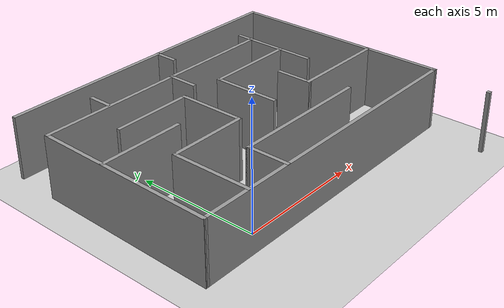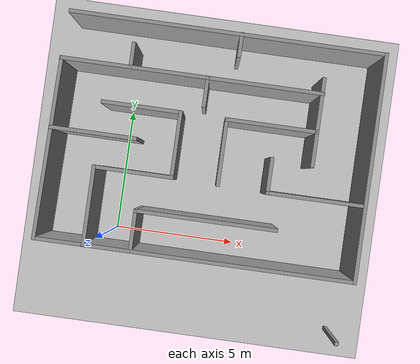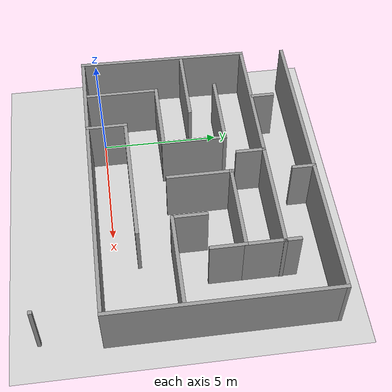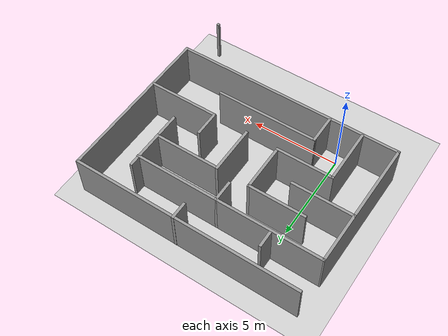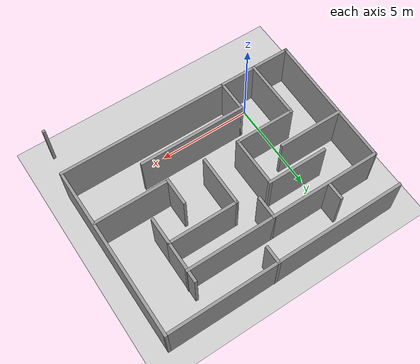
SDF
<sdf version="1.7">
 <world name="default">
  <light name="sun" type="directional">
   <pose>0 0 10 0 -0 0</pose>
   <diffuse>0.8 0.8 0.8 1</diffuse>
   <specular>0.2 0.2 0.2 1</specular>
   <attenuation>
    <range>1000</range>
    <constant>0.9</constant>
    <linear>0.01</linear>
    <quadratic>0.001</quadratic>
   </attenuation>
   <direction>-0.5 0.1 -0.9</direction>
   <spot><inner_angle>0</inner_angle><outer_angle>0</outer_angle><falloff>0</falloff></spot>
  </light>
  <model name="ground_plane">
   <static>1</static>
   <link name="link">
    <collision name="collision">
     <geometry><plane><normal>0 0 1</normal><size>100 100</size></plane></geometry>
     <surface>
      <contact><collide_bitmask>65535</collide_bitmask></contact>
      <friction><ode><mu>100</mu><mu2>50</mu2></ode></friction>
     </surface>
    </collision>
    <visual name="visual">
     <cast_shadows>0</cast_shadows>
     <geometry><plane><normal>0 0 1</normal><size>100 100</size></plane></geometry>
     <material>
      <script><uri>file://media/materials/scripts/gazebo.material</uri><name>Gazebo/Grey</name></script>
     </material>
    </visual>
   </link>
  </model>
  <gravity>0 0 -9.8</gravity>
  <magnetic_field>6e-06 2.3e-05 -4.2e-05</magnetic_field>
  <atmosphere type="adiabatic"/>
  <physics type="ode">
   <max_step_size>0.001</max_step_size>
   <real_time_factor>1</real_time_factor>
   <real_time_update_rate>1000</real_time_update_rate>
  </physics>
  <scene><ambient>0.4 0.4 0.4 1</ambient><background>0.7 0.7 0.7 1</background><shadows>1</shadows></scene>
  <audio><device>default</device></audio>
  <spherical_coordinates>
   <surface_model>EARTH_WGS84</surface_model>
   <latitude_deg>0</latitude_deg>
   <longitude_deg>0</longitude_deg>
   <elevation>0</elevation>
   <heading_deg>0</heading_deg>
  </spherical_coordinates>
  <model name="Laberinto1">
   <pose>3.51708 2.66118 0 0 -0 0</pose>
   <link name="Wall_10">
    <collision name="Wall_10_Collision">
     <geometry><box><size>9.25 0.15 2.5</size></box></geometry>
     <pose>0 0 1.25 0 -0 0</pose>
    </collision>
    <visual name="Wall_10_Visual">
     <pose>0 0 1.25 0 -0 0</pose>
     <geometry><box><size>9.25 0.15 2.5</size></box></geometry>
     <material>
      <script><uri>file://media/materials/scripts/gazebo.material</uri><name>Gazebo/Grey</name></script>
      <ambient>1 1 1 1</ambient>
     </material>
     <meta><layer>0</layer></meta>
    </visual>
    <pose>6.41557 1.24021 0 0 -0 1.5708</pose>
   </link>
   <link name="Wall_14">
    <collision name="Wall_14_Collision">
     <geometry><box><size>12.75 0.15 2.5</size></box></geometry>
     <pose>0 0 1.25 0 -0 0</pose>
    </collision>
    <visual name="Wall_14_Visual">
     <pose>0 0 1.25 0 -0 0</pose>
     <geometry><box><size>12.75 0.15 2.5</size></box></geometry>
     <material>
      <script><uri>file://media/materials/scripts/gazebo.material</uri><name>Gazebo/Grey</name></script>
      <ambient>1 1 1 1</ambient>
     </material>
     <meta><layer>0</layer></meta>
    </visual>
    <pose>0.115569 5.79021 0 0 -0 0</pose>
   </link>
   <link name="Wall_16">
    <collision name="Wall_16_Collision">
     <geometry><box><size>3.25 0.15 2.5</size></box></geometry>
     <pose>0 0 1.25 0 -0 0</pose>
    </collision>
    <visual name="Wall_16_Visual">
     <pose>0 0 1.25 0 -0 0</pose>
     <geometry><box><size>3.25 0.15 2.5</size></box></geometry>
     <material>
      <script><uri>file://media/materials/scripts/gazebo.material</uri><name>Gazebo/Grey</name></script>
      <ambient>1 1 1 1</ambient>
     </material>
     <meta><layer>0</layer></meta>
    </visual>
    <pose>-4.43463 -1.74153 0 0 -0 1.5708</pose>
   </link>
   <link name="Wall_17">
    <collision name="Wall_17_Collision">
     <geometry><box><size>3.25 0.15 2.5</size></box></geometry>
     <pose>0 0 1.25 0 -0 0</pose>
    </collision>
    <visual name="Wall_17_Visual">
     <pose>0 0 1.25 0 -0 0</pose>
     <geometry><box><size>3.25 0.15 2.5</size></box></geometry>
     <material>
      <script><uri>file://media/materials/scripts/gazebo.material</uri><name>Gazebo/Grey</name></script>
      <ambient>1 1 1 1</ambient>
     </material>
     <meta><layer>0</layer></meta>
    </visual>
    <pose>-2.88463 -0.191527 0 0 -0 0</pose>
   </link>
   <link name="Wall_19">
    <collision name="Wall_19_Collision">
     <geometry><box><size>1.75 0.15 2.5</size></box></geometry>
     <pose>0 0 1.25 0 -0 0</pose>
    </collision>
    <visual name="Wall_19_Visual">
     <pose>0 0 1.25 0 -0 0</pose>
     <geometry><box><size>1.75 0.15 2.5</size></box></geometry>
     <material>
      <script><uri>file://media/materials/scripts/gazebo.material</uri><name>Gazebo/Grey</name></script>
      <ambient>1 1 1 1</ambient>
     </material>
     <meta><layer>0</layer></meta>
    </visual>
    <pose>-2.56105 -2.49153 0 0 -0 1.5708</pose>
   </link>
   <link name="Wall_20">
    <collision name="Wall_20_Collision">
     <geometry><box><size>5.75 0.15 2.5</size></box></geometry>
     <pose>0 0 1.25 0 -0 0</pose>
    </collision>
    <visual name="Wall_20_Visual">
     <pose>0 0 1.25 0 -0 0</pose>
     <geometry><box><size>5.75 0.15 2.5</size></box></geometry>
     <material>
      <script><uri>file://media/materials/scripts/gazebo.material</uri><name>Gazebo/Grey</name></script>
      <ambient>1 1 1 1</ambient>
     </material>
     <meta><layer>0</layer></meta>
    </visual>
    <pose>0.238947 -1.69153 0 0 -0 0</pose>
   </link>
   <link name="Wall_22">
    <collision name="Wall_22_Collision">
     <geometry><box><size>2.75 0.15 2.5</size></box></geometry>
     <pose>0 0 1.25 0 -0 0</pose>
    </collision>
    <visual name="Wall_22_Visual">
     <pose>0 0 1.25 0 -0 0</pose>
     <geometry><box><size>2.75 0.15 2.5</size></box></geometry>
     <material>
      <script><uri>file://media/materials/scripts/gazebo.material</uri><name>Gazebo/Grey</name></script>
      <ambient>1 1 1 1</ambient>
     </material>
     <meta><layer>0</layer></meta>
    </visual>
    <pose>0.515318 1.08484 0 0 -0 1.5708</pose>
   </link>
   <link name="Wall_23">
    <collision name="Wall_23_Collision">
     <geometry><box><size>3.75 0.15 2.5</size></box></geometry>
     <pose>0 0 1.25 0 -0 0</pose>
    </collision>
    <visual name="Wall_23_Visual">
     <pose>0 0 1.25 0 -0 0</pose>
     <geometry><box><size>3.75 0.15 2.5</size></box></geometry>
     <material>
      <script><uri>file://media/materials/scripts/gazebo.material</uri><name>Gazebo/Grey</name></script>
      <ambient>1 1 1 1</ambient>
     </material>
     <meta><layer>0</layer></meta>
    </visual>
    <pose>2.31532 2.38484 0 0 -0 0</pose>
   </link>
   <link name="Wall_26">
    <collision name="Wall_26_Collision">
     <geometry><box><size>2.75 0.15 2.5</size></box></geometry>
     <pose>0 0 1.25 0 -0 0</pose>
    </collision>
    <visual name="Wall_26_Visual">
     <pose>0 0 1.25 0 -0 0</pose>
     <geometry><box><size>2.75 0.15 2.5</size></box></geometry>
     <material>
      <script><uri>file://media/materials/scripts/gazebo.material</uri><name>Gazebo/Grey</name></script>
      <ambient>1 1 1 1</ambient>
     </material>
     <meta><layer>0</layer></meta>
    </visual>
    <pose>-1.33463 1.10847 0 0 -0 1.5708</pose>
   </link>
   <link name="Wall_27">
    <collision name="Wall_27_Collision">
     <geometry><box><size>3.25 0.15 2.5</size></box></geometry>
     <pose>0 0 1.25 0 -0 0</pose>
    </collision>
    <visual name="Wall_27_Visual">
     <pose>0 0 1.25 0 -0 0</pose>
     <geometry><box><size>3.25 0.15 2.5</size></box></geometry>
     <material>
      <script><uri>file://media/materials/scripts/gazebo.material</uri><name>Gazebo/Grey</name></script>
      <ambient>1 1 1 1</ambient>
     </material>
     <meta><layer>0</layer></meta>
    </visual>
    <pose>-2.88463 2.40847 0 0 -0 3.14159</pose>
   </link>
   <link name="Wall_29">
    <collision name="Wall_29_Collision">
     <geometry><box><size>3.5 0.15 2.5</size></box></geometry>
     <pose>0 0 1.25 0 -0 0</pose>
    </collision>
    <visual name="Wall_29_Visual">
     <pose>0 0 1.25 0 -0 0</pose>
     <geometry><box><size>3.5 0.15 2.5</size></box></geometry>
     <material>
      <script><uri>file://media/materials/scripts/gazebo.material</uri><name>Gazebo/Grey</name></script>
      <ambient>1 1 1 1</ambient>
     </material>
     <meta><layer>0</layer></meta>
    </visual>
    <pose>-4.65433 1.13245 0 0 -0 0</pose>
   </link>
   <link name="Wall_3">
    <collision name="Wall_3_Collision">
     <geometry><box><size>0.15 0.15 2.5</size></box></geometry>
     <pose>0 0 1.25 0 -0 0</pose>
    </collision>
    <visual name="Wall_3_Visual">
     <pose>0 0 1.25 0 -0 0</pose>
     <geometry><box><size>0.15 0.15 2.5</size></box></geometry>
     <material>
      <script><uri>file://media/materials/scripts/gazebo.material</uri><name>Gazebo/Grey</name></script>
      <ambient>1 1 1 1</ambient>
     </material>
     <meta><layer>0</layer></meta>
    </visual>
    <pose>6.03254 -5.80019 0 0 -0 0</pose>
   </link>
   <link name="Wall_34">
    <collision name="Wall_34_Collision">
     <geometry><box><size>1.5 0.15 2.5</size></box></geometry>
     <pose>0 0 1.25 0 -0 0</pose>
    </collision>
    <visual name="Wall_34_Visual">
     <pose>0 0 1.25 0 -0 0</pose>
     <geometry><box><size>1.5 0.15 2.5</size></box></geometry>
     <material>
      <script><uri>file://media/materials/scripts/gazebo.material</uri><name>Gazebo/Grey</name></script>
      <ambient>1 1 1 1</ambient>
     </material>
     <meta><layer>0</layer></meta>
    </visual>
    <pose>2.50455 0.405158 0 0 -0 -1.5708</pose>
   </link>
   <link name="Wall_35">
    <collision name="Wall_35_Collision">
     <geometry><box><size>4 0.15 2.5</size></box></geometry>
     <pose>0 0 1.25 0 -0 0</pose>
    </collision>
    <visual name="Wall_35_Visual">
     <pose>0 0 1.25 0 -0 0</pose>
     <geometry><box><size>4 0.15 2.5</size></box></geometry>
     <material>
      <script><uri>file://media/materials/scripts/gazebo.material</uri><name>Gazebo/Grey</name></script>
      <ambient>1 1 1 1</ambient>
     </material>
     <meta><layer>0</layer></meta>
    </visual>
    <pose>4.42955 -0.269842 0 0 -0 0</pose>
   </link>
   <link name="Wall_37">
    <collision name="Wall_37_Collision">
     <geometry><box><size>1.5 0.15 2.5</size></box></geometry>
     <pose>0 0 1.25 0 -0 0</pose>
    </collision>
    <visual name="Wall_37_Visual">
     <pose>0 0 1.25 0 -0 0</pose>
     <geometry><box><size>1.5 0.15 2.5</size></box></geometry>
     <material>
      <script><uri>file://media/materials/scripts/gazebo.material</uri><name>Gazebo/Grey</name></script>
      <ambient>1 1 1 1</ambient>
     </material>
     <meta><layer>0</layer></meta>
    </visual>
    <pose>4.11532 1.70984 0 0 -0 -1.5708</pose>
   </link>
   <link name="Wall_41">
    <collision name="Wall_41_Collision">
     <geometry><box><size>2.25 0.15 2.5</size></box></geometry>
     <pose>0 0 1.25 0 -0 0</pose>
    </collision>
    <visual name="Wall_41_Visual">
     <pose>0 0 1.25 0 -0 0</pose>
     <geometry><box><size>2.25 0.15 2.5</size></box></geometry>
     <material>
      <script><uri>file://media/materials/scripts/gazebo.material</uri><name>Gazebo/Grey</name></script>
      <ambient>1 1 1 1</ambient>
     </material>
     <meta><layer>0</layer></meta>
    </visual>
    <pose>4.11532 3.43484 0 0 -0 1.5708</pose>
   </link>
   <link name="Wall_44">
    <collision name="Wall_44_Collision">
     <geometry><box><size>1.25 0.15 2.5</size></box></geometry>
     <pose>0 0 1.25 0 -0 0</pose>
    </collision>
    <visual name="Wall_44_Visual">
     <pose>0 0 1.25 0 -0 0</pose>
     <geometry><box><size>1.25 0.15 2.5</size></box></geometry>
     <material>
      <script><uri>file://media/materials/scripts/gazebo.material</uri><name>Gazebo/Grey</name></script>
      <ambient>1 1 1 1</ambient>
     </material>
     <meta><layer>0</layer></meta>
    </visual>
    <pose>-0.462915 3.35952 0 0 -0 -1.5708</pose>
   </link>
   <link name="Wall_46">
    <collision name="Wall_46_Collision">
     <geometry><box><size>5.95977 0.15 2.5</size></box></geometry>
     <pose>0 0 1.25 0 -0 0</pose>
    </collision>
    <visual name="Wall_46_Visual">
     <pose>0 0 1.25 0 -0 0</pose>
     <geometry><box><size>5.95977 0.15 2.5</size></box></geometry>
     <material>
      <script><uri>file://media/materials/scripts/gazebo.material</uri><name>Gazebo/Grey</name></script>
      <ambient>1 1 1 1</ambient>
     </material>
     <meta><layer>0</layer></meta>
    </visual>
    <pose>-3.3678 3.90952 0 0 -0 3.14159</pose>
   </link>
   <link name="Wall_49">
    <collision name="Wall_49_Collision">
     <geometry><box><size>7.37033 0.15 2.5</size></box></geometry>
     <pose>0 0 1.25 0 -0 0</pose>
    </collision>
    <visual name="Wall_49_Visual">
     <pose>0 0 1.25 0 -0 0</pose>
     <geometry><box><size>7.37033 0.15 2.5</size></box></geometry>
     <material>
      <script><uri>file://media/materials/scripts/gazebo.material</uri><name>Gazebo/Grey</name></script>
      <ambient>1 1 1 1</ambient>
     </material>
     <meta><layer>0</layer></meta>
    </visual>
    <pose>-6.35356 0.299864 0 0 -0 -1.58763</pose>
   </link>
   <link name="Wall_51">
    <collision name="Wall_51_Collision">
     <geometry><box><size>4.75 0.15 2.5</size></box></geometry>
     <pose>0 0 1.25 0 -0 0</pose>
    </collision>
    <visual name="Wall_51_Visual">
     <pose>0 0 1.25 0 -0 0</pose>
     <geometry><box><size>4.75 0.15 2.5</size></box></geometry>
     <material>
      <script><uri>file://media/materials/scripts/gazebo.material</uri><name>Gazebo/Grey</name></script>
      <ambient>1 1 1 1</ambient>
     </material>
     <meta><layer>0</layer></meta>
    </visual>
    <pose>1.83709 3.90952 0 0 -0 0</pose>
   </link>
   <link name="Wall_53">
    <collision name="Wall_53_Collision">
     <geometry><box><size>1 0.15 2.5</size></box></geometry>
     <pose>0 0 1.25 0 -0 0</pose>
    </collision>
    <visual name="Wall_53_Visual">
     <pose>0 0 1.25 0 -0 0</pose>
     <geometry><box><size>1 0.15 2.5</size></box></geometry>
     <material>
      <script><uri>file://media/materials/scripts/gazebo.material</uri><name>Gazebo/Grey</name></script>
      <ambient>1 1 1 1</ambient>
     </material>
     <meta><layer>0</layer></meta>
    </visual>
    <pose>0.643332 5.37519 0 0 -0 -1.5708</pose>
   </link>
   <link name="Wall_55">
    <collision name="Wall_55_Collision">
     <geometry><box><size>1 0.15 2.5</size></box></geometry>
     <pose>0 0 1.25 0 -0 0</pose>
    </collision>
    <visual name="Wall_55_Visual">
     <pose>0 0 1.25 0 -0 0</pose>
     <geometry><box><size>1 0.15 2.5</size></box></geometry>
     <material>
      <script><uri>file://media/materials/scripts/gazebo.material</uri><name>Gazebo/Grey</name></script>
      <ambient>1 1 1 1</ambient>
     </material>
     <meta><layer>0</layer></meta>
    </visual>
    <pose>-3.54029 4.40974 0 0 -0 -1.5708</pose>
   </link>
   <link name="Wall_9">
    <collision name="Wall_9_Collision">
     <geometry><box><size>12.9598 0.15 2.5</size></box></geometry>
     <pose>0 0 1.25 0 -0 0</pose>
    </collision>
    <visual name="Wall_9_Visual">
     <pose>0 0 1.25 0 -0 0</pose>
     <geometry><box><size>12.9598 0.15 2.5</size></box></geometry>
     <material>
      <script><uri>file://media/materials/scripts/gazebo.material</uri><name>Gazebo/Grey</name></script>
      <ambient>1 1 1 1</ambient>
     </material>
     <meta><layer>0</layer></meta>
    </visual>
    <pose>0.010682 -3.30979 0 0 -0 0</pose>
   </link>
   <static>1</static>
  </model>
 </world>
</sdf>
